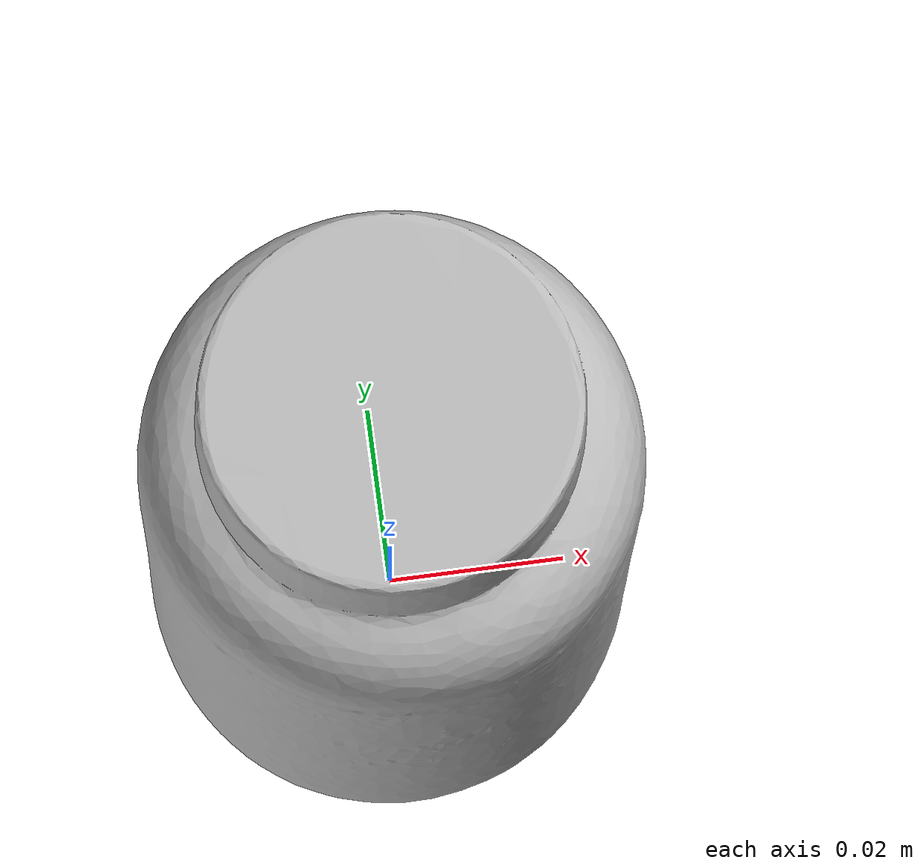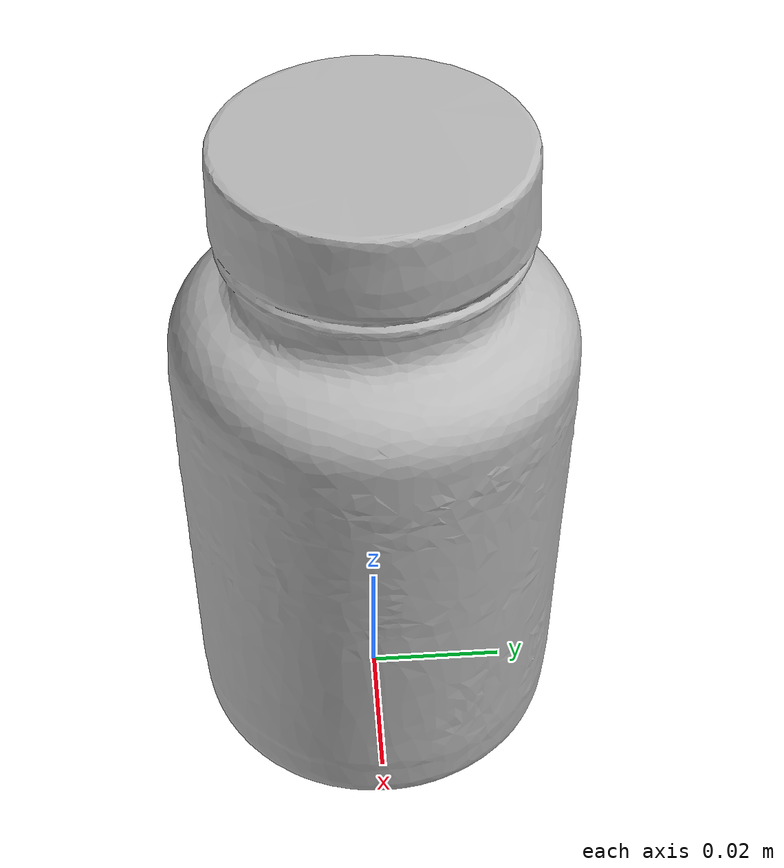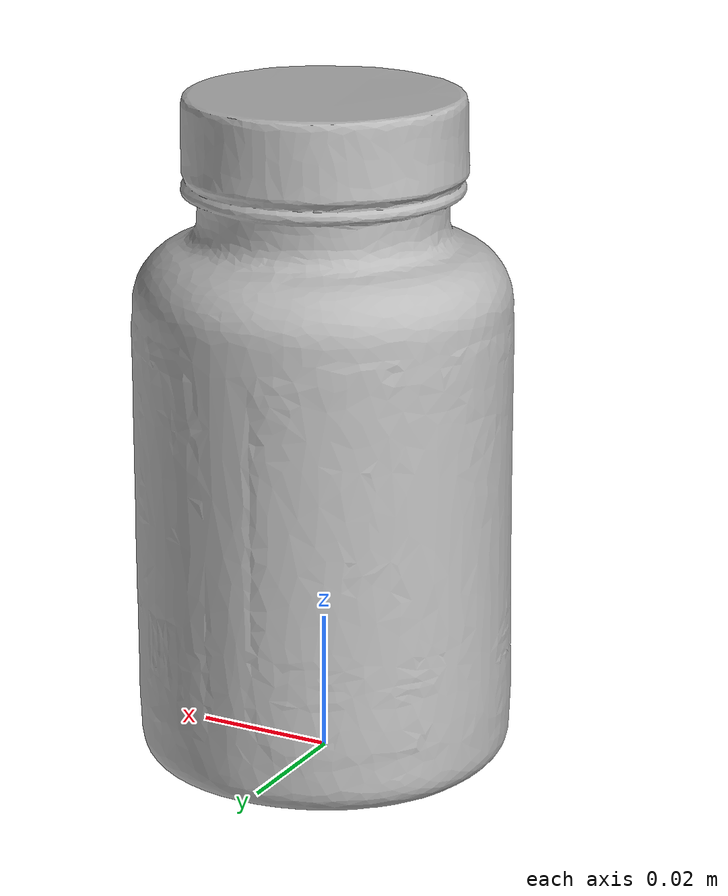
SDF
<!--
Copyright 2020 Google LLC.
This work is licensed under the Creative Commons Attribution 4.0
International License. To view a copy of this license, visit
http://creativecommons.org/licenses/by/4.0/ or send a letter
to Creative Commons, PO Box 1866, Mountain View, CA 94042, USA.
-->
<?xml version="1.0" ?>
<sdf version="1.6">
  <model name="Blackcurrant_Lutein">
    <link name="link_0">
      <inertial>
        <mass>0.2</mass>
        <inertia>
          <ixx>0.001</ixx>
          <ixy>0</ixy>
          <ixz>0</ixz>
          <iyy>0.001</iyy>
          <iyz>0</iyz>
          <izz>0.001</izz>
        </inertia>
        <pose frame=''>0 0 0.03 0 0 0</pose>
      </inertial>
      <visual name="visual">
        <geometry>
          <mesh>
            <uri>meshes/model.obj</uri>
          </mesh>
        </geometry>
      </visual>
      <collision name="collision_0">
        <geometry>
          <mesh>
            <uri>meshes/model.obj</uri>
          </mesh>
        </geometry>
      </collision>
    </link>
  </model>
</sdf>
